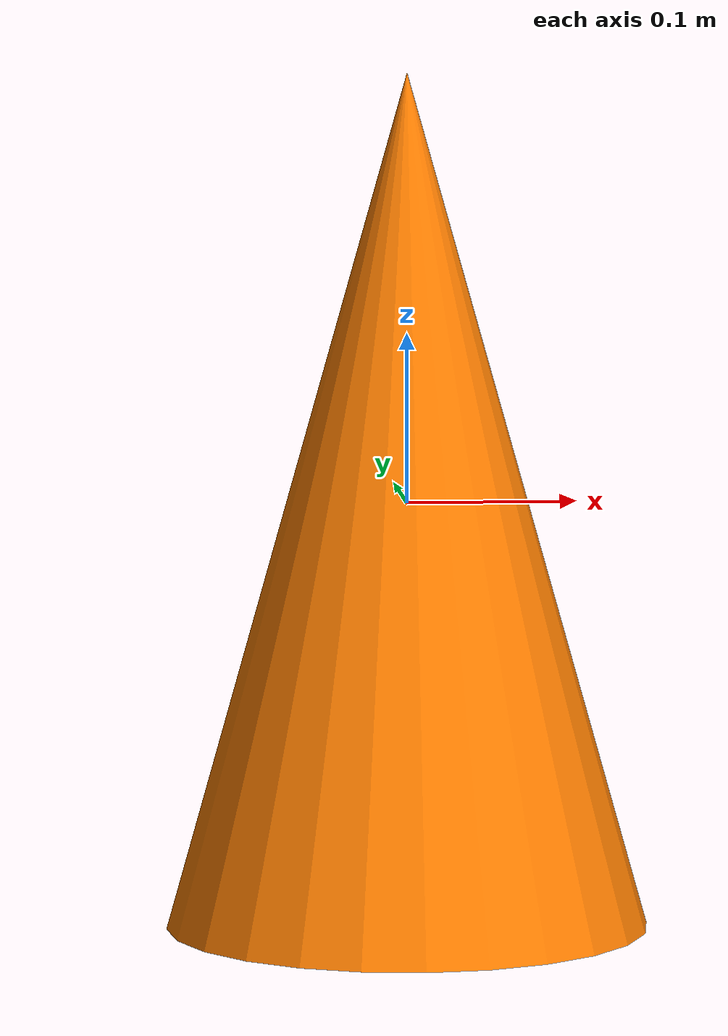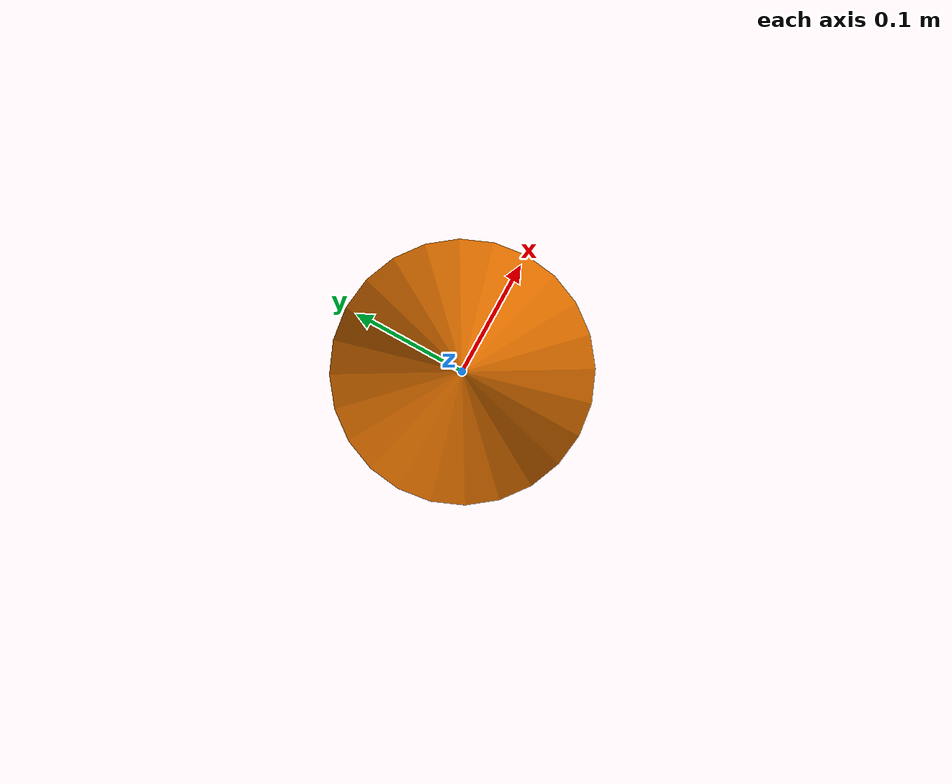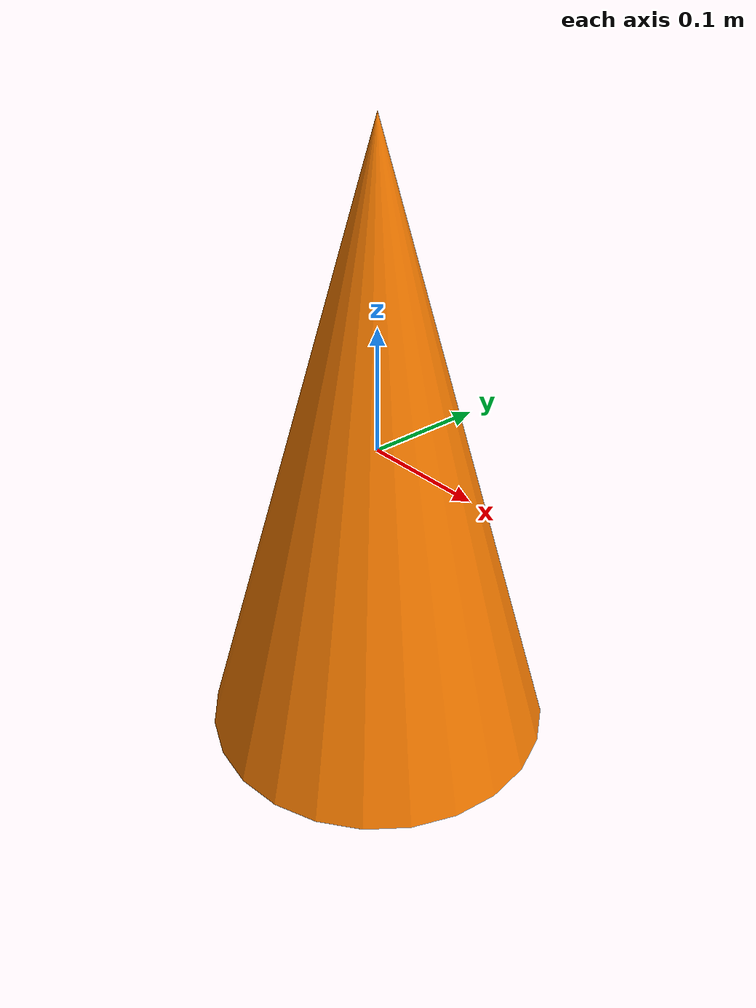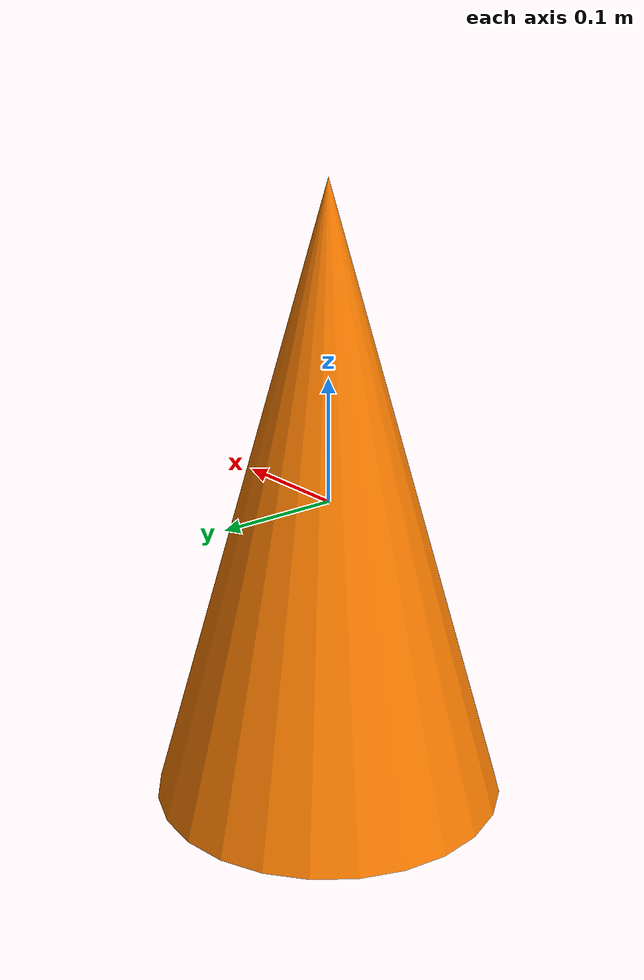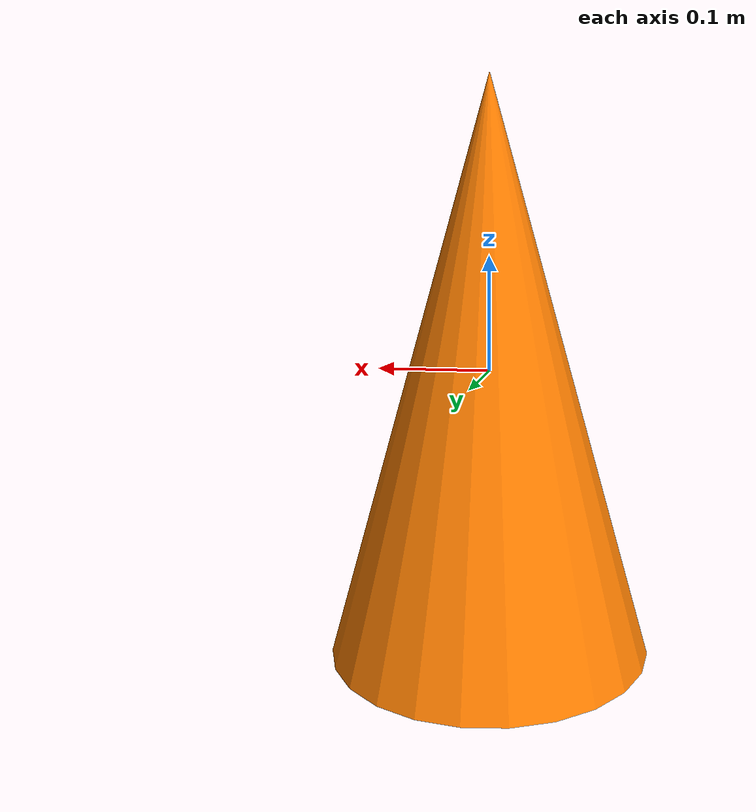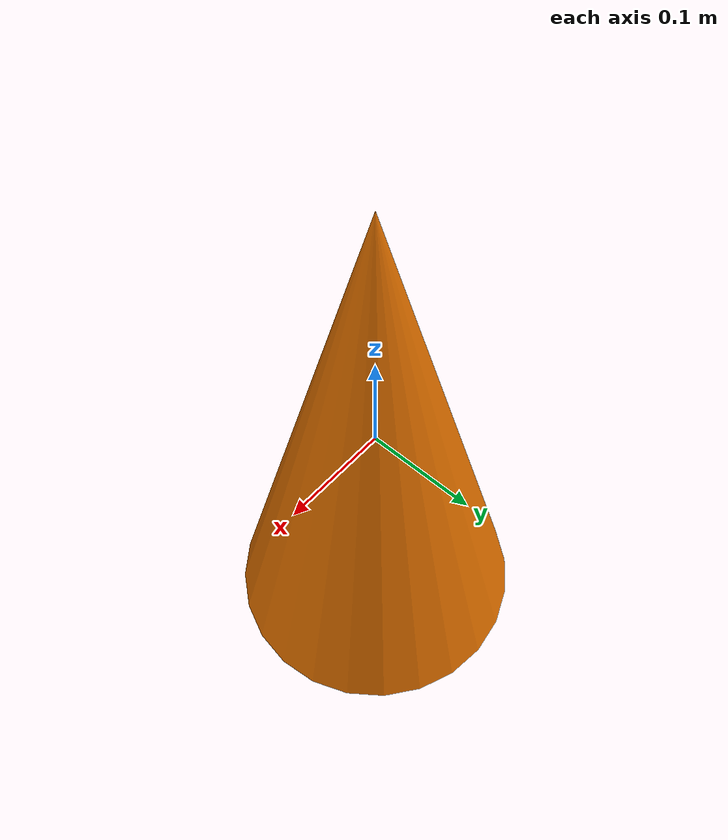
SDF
<?xml version="1.0" ?>
<sdf version="1.9">
  <model name="cone_orange_large">
    <static>true</static>
    <link name="link">
      <collision name="collision">
        <pose>0 0 -0.2525 0 0 0</pose>
        <geometry>
          <mesh>
            <uri>model://cone_orange_large/meshes/cone.stl</uri>
          </mesh>
        </geometry>
      </collision>
      <visual name="visual">
        <pose>0 0 -0.2525 0 0 0</pose>
        <geometry>
          <mesh>
            <uri>model://cone_orange_large/meshes/cone.stl</uri>
          </mesh>
        </geometry>
        <material>
          <ambient>1.0 0.5 0.0 1</ambient>
          <diffuse>1.0 0.5 0.0 1</diffuse>
          <specular>0.1 0.1 0.1 1</specular>
        </material>
      </visual>
    </link>
  </model>
</sdf>
